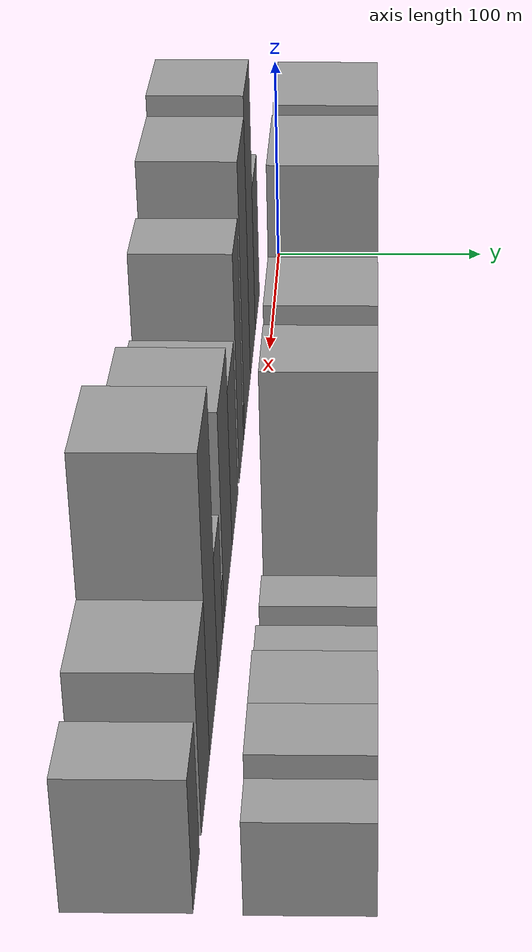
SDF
<sdf version="1.6">
 <world name="default">
  <scene>
   <sky><clouds><speed>12</speed></clouds></sky>
   <ambient>0.4 0.4 0.4 1</ambient>
   <background>0.7 0.7 0.7 1</background>
   <shadows>1</shadows>
  </scene>
  <gravity>0 0 -9.8066</gravity>
  <magnetic_field>6e-06 2.3e-05 -4.2e-05</magnetic_field>
  <physics default="0" name="default_physics" type="ode">
   <ode>
    <solver>
     <type>quick</type>
     <iters>10</iters>
     <sor>1.0</sor>
     <use_dynamic_moi_rescaling>0</use_dynamic_moi_rescaling>
    </solver>
    <constraints>
     <cfm>0</cfm>
     <erp>0.2</erp>
     <contact_max_correcting_vel>100</contact_max_correcting_vel>
     <contact_surface_layer>0.001</contact_surface_layer>
    </constraints>
   </ode>
   <max_step_size>0.004</max_step_size>
   <real_time_factor>1</real_time_factor>
   <real_time_update_rate>250</real_time_update_rate>
  </physics>
  <light name="sun" type="directional">
   <pose>0 0 10 0 0 0</pose>
   <diffuse>0.8 0.8 0.8 1</diffuse>
   <specular>0.2 0.2 0.2 1</specular>
   <attenuation>
    <range>1000</range>
    <constant>0.9</constant>
    <linear>0.01</linear>
    <quadratic>0.001</quadratic>
   </attenuation>
   <direction>-0.5 0.1 -0.9</direction>
  </light>
  <model name="building_1">
   <static>1</static>
   <pose>44.5452 27.5000 0 0.000000 0.000000 1.570796</pose>
   <link name="link">
    <pose>0 0 10.50 0 0 0</pose>
    <collision name="collision"><geometry><box><size>40.0000 9.0904 21.0000</size></box></geometry></collision>
    <visual name="visual">
     <cast_shadows>0</cast_shadows>
     <geometry><box><size>40.0000 9.0904 21.0000</size></box></geometry>
     <material>
      <script>
       <uri>model://grey_wall/materials/scripts</uri>
       <uri>model://grey_wall/materials/textures</uri>
       <name>vrc/grey_wall</name>
      </script>
     </material>
    </visual>
   </link>
  </model>
  <model name="building_2">
   <static>1</static>
   <pose>70.5771 27.5000 0 0.000000 0.000000 1.570796</pose>
   <link name="link">
    <pose>0 0 36.00 0 0 0</pose>
    <collision name="collision"><geometry><box><size>40.0000 42.9735 72.0000</size></box></geometry></collision>
    <visual name="visual">
     <cast_shadows>0</cast_shadows>
     <geometry><box><size>40.0000 42.9735 72.0000</size></box></geometry>
     <material>
      <script>
       <uri>model://grey_wall/materials/scripts</uri>
       <uri>model://grey_wall/materials/textures</uri>
       <name>vrc/grey_wall</name>
      </script>
     </material>
    </visual>
   </link>
  </model>
  <model name="building_3">
   <static>1</static>
   <pose>118.1432 27.5000 0 0.000000 0.000000 1.570796</pose>
   <link name="link">
    <pose>0 0 31.50 0 0 0</pose>
    <collision name="collision"><geometry><box><size>40.0000 36.1587 63.0000</size></box></geometry></collision>
    <visual name="visual">
     <cast_shadows>0</cast_shadows>
     <geometry><box><size>40.0000 36.1587 63.0000</size></box></geometry>
     <material>
      <script>
       <uri>model://grey_wall/materials/scripts</uri>
       <uri>model://grey_wall/materials/textures</uri>
       <name>vrc/grey_wall</name>
      </script>
     </material>
    </visual>
   </link>
  </model>
  <model name="building_4">
   <static>1</static>
   <pose>160.0432 27.5000 0 0.000000 0.000000 1.570796</pose>
   <link name="link">
    <pose>0 0 75.00 0 0 0</pose>
    <collision name="collision"><geometry><box><size>40.0000 47.6412 150.0000</size></box></geometry></collision>
    <visual name="visual">
     <cast_shadows>0</cast_shadows>
     <geometry><box><size>40.0000 47.6412 150.0000</size></box></geometry>
     <material>
      <script>
       <uri>model://grey_wall/materials/scripts</uri>
       <uri>model://grey_wall/materials/textures</uri>
       <name>vrc/grey_wall</name>
      </script>
     </material>
    </visual>
   </link>
  </model>
  <model name="building_5">
   <static>1</static>
   <pose>218.1192 27.5000 0 0.000000 0.000000 1.570796</pose>
   <link name="link">
    <pose>0 0 75.00 0 0 0</pose>
    <collision name="collision"><geometry><box><size>40.0000 48.5108 150.0000</size></box></geometry></collision>
    <visual name="visual">
     <cast_shadows>0</cast_shadows>
     <geometry><box><size>40.0000 48.5108 150.0000</size></box></geometry>
     <material>
      <script>
       <uri>model://grey_wall/materials/scripts</uri>
       <uri>model://grey_wall/materials/textures</uri>
       <name>vrc/grey_wall</name>
      </script>
     </material>
    </visual>
   </link>
  </model>
  <model name="building_6">
   <static>1</static>
   <pose>262.0023 27.5000 0 0.000000 0.000000 1.570796</pose>
   <link name="link">
    <pose>0 0 57.00 0 0 0</pose>
    <collision name="collision"><geometry><box><size>40.0000 39.2553 114.0000</size></box></geometry></collision>
    <visual name="visual">
     <cast_shadows>0</cast_shadows>
     <geometry><box><size>40.0000 39.2553 114.0000</size></box></geometry>
     <material>
      <script>
       <uri>model://grey_wall/materials/scripts</uri>
       <uri>model://grey_wall/materials/textures</uri>
       <name>vrc/grey_wall</name>
      </script>
     </material>
    </visual>
   </link>
  </model>
  <model name="building_7">
   <static>1</static>
   <pose>301.5971 27.5000 0 0.000000 0.000000 1.570796</pose>
   <link name="link">
    <pose>0 0 54.00 0 0 0</pose>
    <collision name="collision"><geometry><box><size>40.0000 33.9343 108.0000</size></box></geometry></collision>
    <visual name="visual">
     <cast_shadows>0</cast_shadows>
     <geometry><box><size>40.0000 33.9343 108.0000</size></box></geometry>
     <material>
      <script>
       <uri>model://grey_wall/materials/scripts</uri>
       <uri>model://grey_wall/materials/textures</uri>
       <name>vrc/grey_wall</name>
      </script>
     </material>
    </visual>
   </link>
  </model>
  <model name="building_8">
   <static>1</static>
   <pose>337.7096 27.5000 0 0.000000 0.000000 1.570796</pose>
   <link name="link">
    <pose>0 0 16.50 0 0 0</pose>
    <collision name="collision"><geometry><box><size>40.0000 18.2908 33.0000</size></box></geometry></collision>
    <visual name="visual">
     <cast_shadows>0</cast_shadows>
     <geometry><box><size>40.0000 18.2908 33.0000</size></box></geometry>
     <material>
      <script>
       <uri>model://grey_wall/materials/scripts</uri>
       <uri>model://grey_wall/materials/textures</uri>
       <name>vrc/grey_wall</name>
      </script>
     </material>
    </visual>
   </link>
  </model>
  <model name="building_9">
   <static>1</static>
   <pose>360.4287 27.5000 0 0.000000 0.000000 1.570796</pose>
   <link name="link">
    <pose>0 0 12.00 0 0 0</pose>
    <collision name="collision"><geometry><box><size>40.0000 11.1475 24.0000</size></box></geometry></collision>
    <visual name="visual">
     <cast_shadows>0</cast_shadows>
     <geometry><box><size>40.0000 11.1475 24.0000</size></box></geometry>
     <material>
      <script>
       <uri>model://grey_wall/materials/scripts</uri>
       <uri>model://grey_wall/materials/textures</uri>
       <name>vrc/grey_wall</name>
      </script>
     </material>
    </visual>
   </link>
  </model>
  <model name="building_10">
   <static>1</static>
   <pose>376.8755 27.5000 0 0.000000 0.000000 1.570796</pose>
   <link name="link">
    <pose>0 0 19.50 0 0 0</pose>
    <collision name="collision"><geometry><box><size>40.0000 21.7459 39.0000</size></box></geometry></collision>
    <visual name="visual">
     <cast_shadows>0</cast_shadows>
     <geometry><box><size>40.0000 21.7459 39.0000</size></box></geometry>
     <material>
      <script>
       <uri>model://grey_wall/materials/scripts</uri>
       <uri>model://grey_wall/materials/textures</uri>
       <name>vrc/grey_wall</name>
      </script>
     </material>
    </visual>
   </link>
  </model>
  <model name="building_11">
   <static>1</static>
   <pose>401.1954 27.5000 0 0.000000 0.000000 1.570796</pose>
   <link name="link">
    <pose>0 0 22.50 0 0 0</pose>
    <collision name="collision"><geometry><box><size>40.0000 26.8939 45.0000</size></box></geometry></collision>
    <visual name="visual">
     <cast_shadows>0</cast_shadows>
     <geometry><box><size>40.0000 26.8939 45.0000</size></box></geometry>
     <material>
      <script>
       <uri>model://grey_wall/materials/scripts</uri>
       <uri>model://grey_wall/materials/textures</uri>
       <name>vrc/grey_wall</name>
      </script>
     </material>
    </visual>
   </link>
  </model>
  <model name="building_12">
   <static>1</static>
   <pose>426.8870 27.5000 0 0.000000 0.000000 1.570796</pose>
   <link name="link">
    <pose>0 0 22.50 0 0 0</pose>
    <collision name="collision"><geometry><box><size>40.0000 24.4894 45.0000</size></box></geometry></collision>
    <visual name="visual">
     <cast_shadows>0</cast_shadows>
     <geometry><box><size>40.0000 24.4894 45.0000</size></box></geometry>
     <material>
      <script>
       <uri>model://grey_wall/materials/scripts</uri>
       <uri>model://grey_wall/materials/textures</uri>
       <name>vrc/grey_wall</name>
      </script>
     </material>
    </visual>
   </link>
  </model>
  <model name="building_13">
   <static>1</static>
   <pose>448.7999 27.5000 0 0.000000 0.000000 1.570796</pose>
   <link name="link">
    <pose>0 0 18.00 0 0 0</pose>
    <collision name="collision"><geometry><box><size>40.0000 19.3363 36.0000</size></box></geometry></collision>
    <visual name="visual">
     <cast_shadows>0</cast_shadows>
     <geometry><box><size>40.0000 19.3363 36.0000</size></box></geometry>
     <material>
      <script>
       <uri>model://grey_wall/materials/scripts</uri>
       <uri>model://grey_wall/materials/textures</uri>
       <name>vrc/grey_wall</name>
      </script>
     </material>
    </visual>
   </link>
  </model>
  <model name="building_14">
   <static>1</static>
   <pose>64.6152 -27.5000 0 0.000000 0.000000 1.570796</pose>
   <link name="link">
    <pose>0 0 36.00 0 0 0</pose>
    <collision name="collision"><geometry><box><size>40.0000 39.2304 72.0000</size></box></geometry></collision>
    <visual name="visual">
     <cast_shadows>0</cast_shadows>
     <geometry><box><size>40.0000 39.2304 72.0000</size></box></geometry>
     <material>
      <script>
       <uri>model://grey_wall/materials/scripts</uri>
       <uri>model://grey_wall/materials/textures</uri>
       <name>vrc/grey_wall</name>
      </script>
     </material>
    </visual>
   </link>
  </model>
  <model name="building_15">
   <static>1</static>
   <pose>105.7762 -27.5000 0 0.000000 0.000000 1.570796</pose>
   <link name="link">
    <pose>0 0 66.00 0 0 0</pose>
    <collision name="collision"><geometry><box><size>40.0000 43.0916 132.0000</size></box></geometry></collision>
    <visual name="visual">
     <cast_shadows>0</cast_shadows>
     <geometry><box><size>40.0000 43.0916 132.0000</size></box></geometry>
     <material>
      <script>
       <uri>model://grey_wall/materials/scripts</uri>
       <uri>model://grey_wall/materials/textures</uri>
       <name>vrc/grey_wall</name>
      </script>
     </material>
    </visual>
   </link>
  </model>
  <model name="building_16">
   <static>1</static>
   <pose>151.2826 -27.5000 0 0.000000 0.000000 1.570796</pose>
   <link name="link">
    <pose>0 0 61.50 0 0 0</pose>
    <collision name="collision"><geometry><box><size>40.0000 47.9210 123.0000</size></box></geometry></collision>
    <visual name="visual">
     <cast_shadows>0</cast_shadows>
     <geometry><box><size>40.0000 47.9210 123.0000</size></box></geometry>
     <material>
      <script>
       <uri>model://grey_wall/materials/scripts</uri>
       <uri>model://grey_wall/materials/textures</uri>
       <name>vrc/grey_wall</name>
      </script>
     </material>
    </visual>
   </link>
  </model>
  <model name="building_17">
   <static>1</static>
   <pose>178.9516 -27.5000 0 0.000000 0.000000 1.570796</pose>
   <link name="link">
    <pose>0 0 7.50 0 0 0</pose>
    <collision name="collision"><geometry><box><size>40.0000 7.4171 15.0000</size></box></geometry></collision>
    <visual name="visual">
     <cast_shadows>0</cast_shadows>
     <geometry><box><size>40.0000 7.4171 15.0000</size></box></geometry>
     <material>
      <script>
       <uri>model://grey_wall/materials/scripts</uri>
       <uri>model://grey_wall/materials/textures</uri>
       <name>vrc/grey_wall</name>
      </script>
     </material>
    </visual>
   </link>
  </model>
  <model name="building_18">
   <static>1</static>
   <pose>198.9719 -27.5000 0 0.000000 0.000000 1.570796</pose>
   <link name="link">
    <pose>0 0 51.00 0 0 0</pose>
    <collision name="collision"><geometry><box><size>40.0000 32.6235 102.0000</size></box></geometry></collision>
    <visual name="visual">
     <cast_shadows>0</cast_shadows>
     <geometry><box><size>40.0000 32.6235 102.0000</size></box></geometry>
     <material>
      <script>
       <uri>model://grey_wall/materials/scripts</uri>
       <uri>model://grey_wall/materials/textures</uri>
       <name>vrc/grey_wall</name>
      </script>
     </material>
    </visual>
   </link>
  </model>
  <model name="building_19">
   <static>1</static>
   <pose>242.8367 -27.5000 0 0.000000 0.000000 1.570796</pose>
   <link name="link">
    <pose>0 0 34.50 0 0 0</pose>
    <collision name="collision"><geometry><box><size>40.0000 39.1060 69.0000</size></box></geometry></collision>
    <visual name="visual">
     <cast_shadows>0</cast_shadows>
     <geometry><box><size>40.0000 39.1060 69.0000</size></box></geometry>
     <material>
      <script>
       <uri>model://grey_wall/materials/scripts</uri>
       <uri>model://grey_wall/materials/textures</uri>
       <name>vrc/grey_wall</name>
      </script>
     </material>
    </visual>
   </link>
  </model>
  <model name="building_20">
   <static>1</static>
   <pose>285.9018 -27.5000 0 0.000000 0.000000 1.570796</pose>
   <link name="link">
    <pose>0 0 43.50 0 0 0</pose>
    <collision name="collision"><geometry><box><size>40.0000 47.0242 87.0000</size></box></geometry></collision>
    <visual name="visual">
     <cast_shadows>0</cast_shadows>
     <geometry><box><size>40.0000 47.0242 87.0000</size></box></geometry>
     <material>
      <script>
       <uri>model://grey_wall/materials/scripts</uri>
       <uri>model://grey_wall/materials/textures</uri>
       <name>vrc/grey_wall</name>
      </script>
     </material>
    </visual>
   </link>
  </model>
  <model name="building_21">
   <static>1</static>
   <pose>313.7958 -27.5000 0 0.000000 0.000000 1.570796</pose>
   <link name="link">
    <pose>0 0 10.50 0 0 0</pose>
    <collision name="collision"><geometry><box><size>40.0000 8.7639 21.0000</size></box></geometry></collision>
    <visual name="visual">
     <cast_shadows>0</cast_shadows>
     <geometry><box><size>40.0000 8.7639 21.0000</size></box></geometry>
     <material>
      <script>
       <uri>model://grey_wall/materials/scripts</uri>
       <uri>model://grey_wall/materials/textures</uri>
       <name>vrc/grey_wall</name>
      </script>
     </material>
    </visual>
   </link>
  </model>
  <model name="building_22">
   <static>1</static>
   <pose>331.5416 -27.5000 0 0.000000 0.000000 1.570796</pose>
   <link name="link">
    <pose>0 0 25.50 0 0 0</pose>
    <collision name="collision"><geometry><box><size>40.0000 26.7277 51.0000</size></box></geometry></collision>
    <visual name="visual">
     <cast_shadows>0</cast_shadows>
     <geometry><box><size>40.0000 26.7277 51.0000</size></box></geometry>
     <material>
      <script>
       <uri>model://grey_wall/materials/scripts</uri>
       <uri>model://grey_wall/materials/textures</uri>
       <name>vrc/grey_wall</name>
      </script>
     </material>
    </visual>
   </link>
  </model>
  <model name="building_23">
   <static>1</static>
   <pose>365.5544 -27.5000 0 0.000000 0.000000 1.570796</pose>
   <link name="link">
    <pose>0 0 58.50 0 0 0</pose>
    <collision name="collision"><geometry><box><size>40.0000 41.2978 117.0000</size></box></geometry></collision>
    <visual name="visual">
     <cast_shadows>0</cast_shadows>
     <geometry><box><size>40.0000 41.2978 117.0000</size></box></geometry>
     <material>
      <script>
       <uri>model://grey_wall/materials/scripts</uri>
       <uri>model://grey_wall/materials/textures</uri>
       <name>vrc/grey_wall</name>
      </script>
     </material>
    </visual>
   </link>
  </model>
  <model name="building_24">
   <static>1</static>
   <pose>404.9177 -27.5000 0 0.000000 0.000000 1.570796</pose>
   <link name="link">
    <pose>0 0 31.50 0 0 0</pose>
    <collision name="collision"><geometry><box><size>40.0000 37.4288 63.0000</size></box></geometry></collision>
    <visual name="visual">
     <cast_shadows>0</cast_shadows>
     <geometry><box><size>40.0000 37.4288 63.0000</size></box></geometry>
     <material>
      <script>
       <uri>model://grey_wall/materials/scripts</uri>
       <uri>model://grey_wall/materials/textures</uri>
       <name>vrc/grey_wall</name>
      </script>
     </material>
    </visual>
   </link>
  </model>
  <model name="building_25">
   <static>1</static>
   <pose>444.6998 -27.5000 0 0.000000 0.000000 1.570796</pose>
   <link name="link">
    <pose>0 0 25.50 0 0 0</pose>
    <collision name="collision"><geometry><box><size>40.0000 26.1354 51.0000</size></box></geometry></collision>
    <visual name="visual">
     <cast_shadows>0</cast_shadows>
     <geometry><box><size>40.0000 26.1354 51.0000</size></box></geometry>
     <material>
      <script>
       <uri>model://grey_wall/materials/scripts</uri>
       <uri>model://grey_wall/materials/textures</uri>
       <name>vrc/grey_wall</name>
      </script>
     </material>
    </visual>
   </link>
  </model>
 </world>
</sdf>
